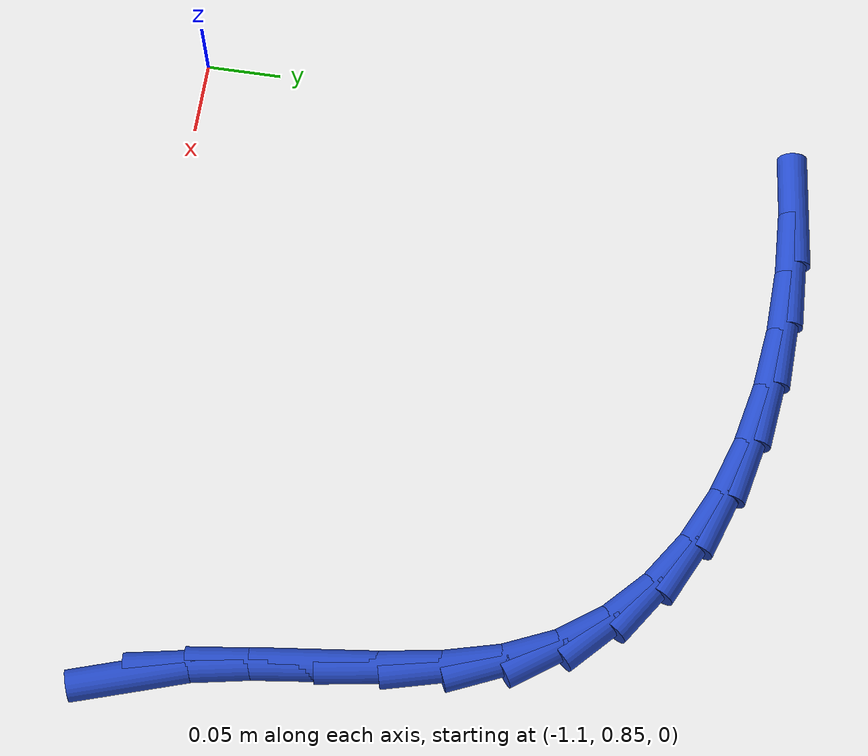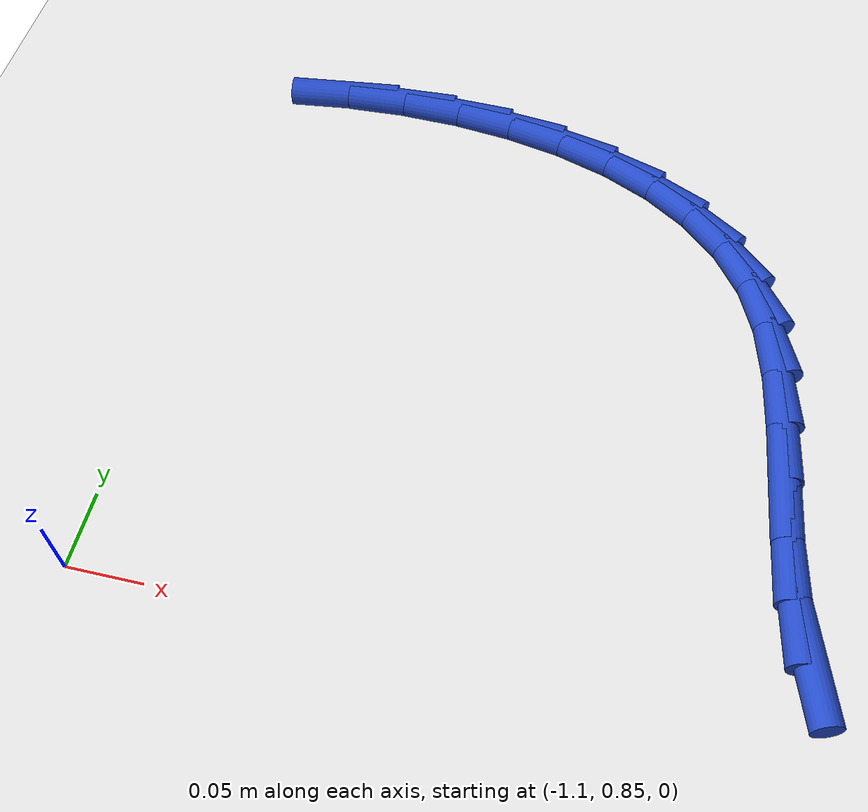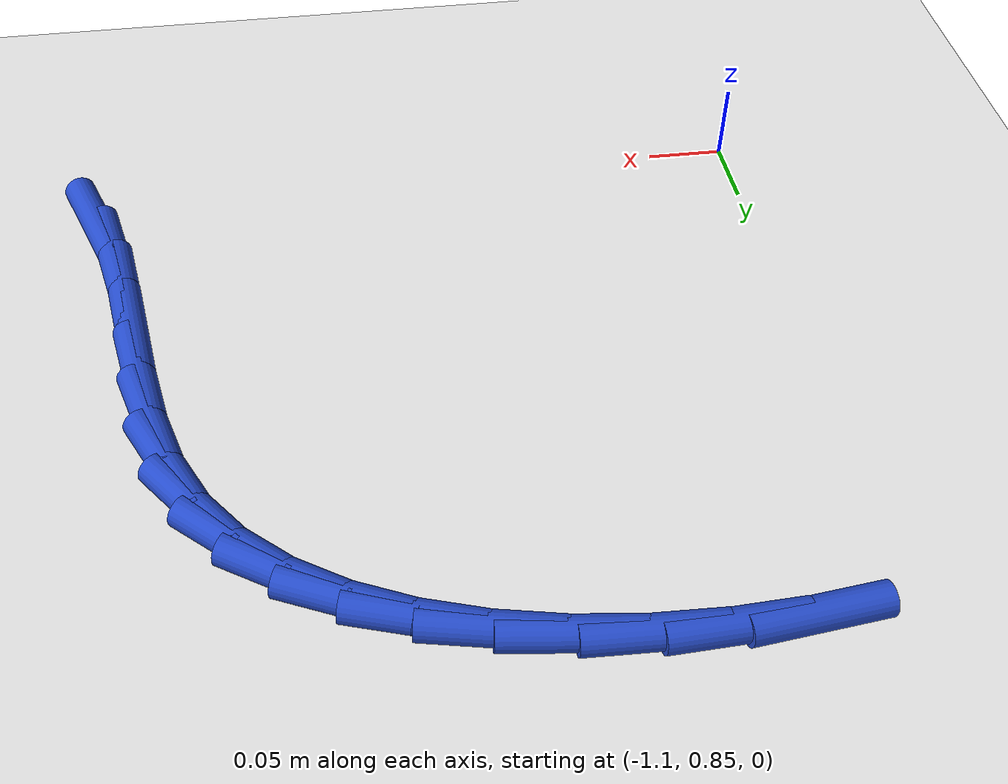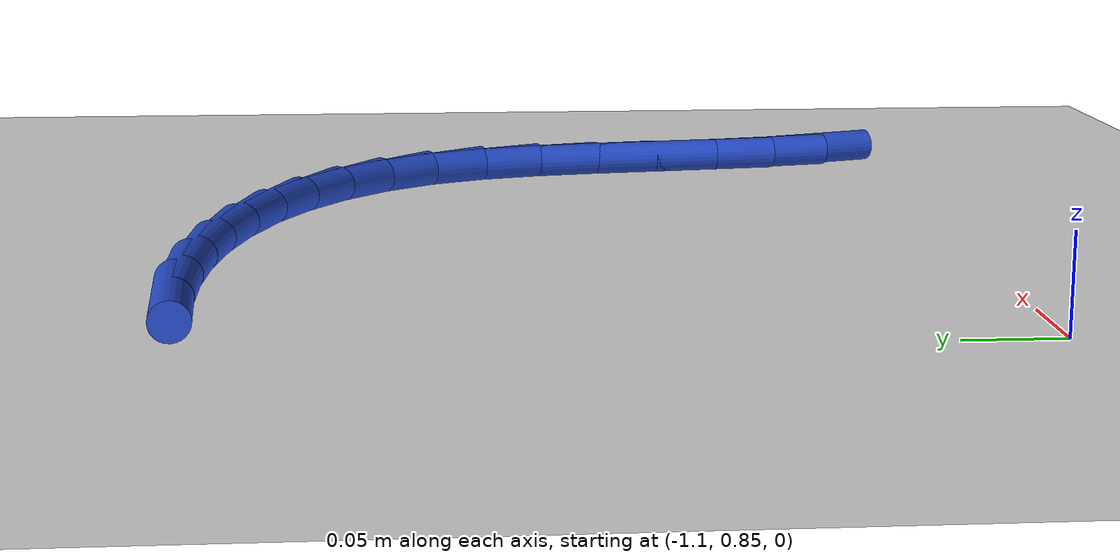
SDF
<sdf version="1.6">
 <world name="default">
  <model name="ground_plane">
   <static>1</static>
   <link name="link">
    <collision name="collision">
     <geometry><plane><normal>0 0 1</normal><size>100 100</size></plane></geometry>
     <surface><friction><ode><mu>100</mu><mu2>50</mu2></ode></friction></surface>
    </collision>
    <visual name="visual">
     <cast_shadows>0</cast_shadows>
     <geometry><plane><normal>0 0 1</normal><size>100 100</size></plane></geometry>
     <material>
      <script><uri>file://media/materials/scripts/gazebo.material</uri><name>Gazebo/WhiteGlow</name></script>
     </material>
    </visual>
   </link>
  </model>
  <model name="line">
   <link name="link_32">
    <pose>-0.6662520378113883 0.8860146556217079 0.01 0 1.57 -1.2587014514623511</pose>
    <collision name="collision">
     <geometry><cylinder><radius>0.01</radius><length>0.08</length></cylinder></geometry>
    </collision>
    <visual name="visual">
     <material>
      <script><name>Gazebo/Blue</name><uri>file://media/materials/scripts/gazebo.material</uri></script>
     </material>
     <geometry><cylinder><radius>0.01</radius><length>0.08</length></cylinder></geometry>
    </visual>
   </link>
   <link name="link_33">
    <pose>-0.6770591071181126 0.9195105225557909 0.01 0 1.57 -1.383983918766557</pose>
    <collision name="collision">
     <geometry><cylinder><radius>0.01</radius><length>0.08</length></cylinder></geometry>
    </collision>
    <visual name="visual">
     <material>
      <script><name>Gazebo/Blue</name><uri>file://media/materials/scripts/gazebo.material</uri></script>
     </material>
     <geometry><cylinder><radius>0.01</radius><length>0.08</length></cylinder></geometry>
    </visual>
   </link>
   <link name="link_34">
    <pose>-0.6840278526906737 0.9563790008187679 0.01 0 1.57 -1.4448951045219727</pose>
    <collision name="collision">
     <geometry><cylinder><radius>0.01</radius><length>0.08</length></cylinder></geometry>
    </collision>
    <visual name="visual">
     <material>
      <script><name>Gazebo/Blue</name><uri>file://media/materials/scripts/gazebo.material</uri></script>
     </material>
     <geometry><cylinder><radius>0.01</radius><length>0.08</length></cylinder></geometry>
    </visual>
   </link>
   <link name="link_35">
    <pose>-0.6889454128609842 0.9952312823251865 0.01 0 1.57 -1.4533711151475703</pose>
    <collision name="collision">
     <geometry><cylinder><radius>0.01</radius><length>0.08</length></cylinder></geometry>
    </collision>
    <visual name="visual">
     <material>
      <script><name>Gazebo/Blue</name><uri>file://media/materials/scripts/gazebo.material</uri></script>
     </material>
     <geometry><cylinder><radius>0.01</radius><length>0.08</length></cylinder></geometry>
    </visual>
   </link>
   <link name="link_36">
    <pose>-0.6935989259609571 1.0346785589895953 0.01 0 1.57 -1.4123416067688785</pose>
    <collision name="collision">
     <geometry><cylinder><radius>0.01</radius><length>0.08</length></cylinder></geometry>
    </collision>
    <visual name="visual">
     <material>
      <script><name>Gazebo/Blue</name><uri>file://media/materials/scripts/gazebo.material</uri></script>
     </material>
     <geometry><cylinder><radius>0.01</radius><length>0.08</length></cylinder></geometry>
    </visual>
   </link>
   <link name="link_37">
    <pose>-0.6997755303225047 1.0733320227265424 0.01 0 1.57 -1.3163148851048265</pose>
    <collision name="collision">
     <geometry><cylinder><radius>0.01</radius><length>0.08</length></cylinder></geometry>
    </collision>
    <visual name="visual">
     <material>
      <script><name>Gazebo/Blue</name><uri>file://media/materials/scripts/gazebo.material</uri></script>
     </material>
     <geometry><cylinder><radius>0.01</radius><length>0.08</length></cylinder></geometry>
    </visual>
   </link>
   <link name="link_38">
    <pose>-0.7092623642775403 1.109802865450576 0.01 0 1.57 -1.1543245672321736</pose>
    <collision name="collision">
     <geometry><cylinder><radius>0.01</radius><length>0.08</length></cylinder></geometry>
    </collision>
    <visual name="visual">
     <material>
      <script><name>Gazebo/Blue</name><uri>file://media/materials/scripts/gazebo.material</uri></script>
     </material>
     <geometry><cylinder><radius>0.01</radius><length>0.08</length></cylinder></geometry>
    </visual>
   </link>
   <link name="link_39">
    <pose>-0.7238220319621379 1.1427174261493862 0.01 0 1.57 -0.9514174282157696</pose>
    <collision name="collision">
     <geometry><cylinder><radius>0.01</radius><length>0.08</length></cylinder></geometry>
    </collision>
    <visual name="visual">
     <material>
      <script><name>Gazebo/Blue</name><uri>file://media/materials/scripts/gazebo.material</uri></script>
     </material>
     <geometry><cylinder><radius>0.01</radius><length>0.08</length></cylinder></geometry>
    </visual>
   </link>
   <link name="link_40">
    <pose>-0.7442152736061436 1.171320580728098 0.01 0 1.57 -0.7594153593585119</pose>
    <collision name="collision">
     <geometry><cylinder><radius>0.01</radius><length>0.08</length></cylinder></geometry>
    </collision>
    <visual name="visual">
     <material>
      <script><name>Gazebo/Blue</name><uri>file://media/materials/scripts/gazebo.material</uri></script>
     </material>
     <geometry><cylinder><radius>0.01</radius><length>0.08</length></cylinder></geometry>
    </visual>
   </link>
   <link name="link_41">
    <pose>-0.7698728434317024 1.1956783200559753 0.01 0 1.57 -0.589399324187846</pose>
    <collision name="collision">
     <geometry><cylinder><radius>0.01</radius><length>0.08</length></cylinder></geometry>
    </collision>
    <visual name="visual">
     <material>
      <script><name>Gazebo/Blue</name><uri>file://media/materials/scripts/gazebo.material</uri></script>
     </material>
     <geometry><cylinder><radius>0.01</radius><length>0.08</length></cylinder></geometry>
    </visual>
   </link>
   <link name="link_42">
    <pose>-0.8001336814655065 1.2159133198165366 0.01 0 1.57 -0.4431737044444387</pose>
    <collision name="collision">
     <geometry><cylinder><radius>0.01</radius><length>0.08</length></cylinder></geometry>
    </collision>
    <visual name="visual">
     <material>
      <script><name>Gazebo/Blue</name><uri>file://media/materials/scripts/gazebo.material</uri></script>
     </material>
     <geometry><cylinder><radius>0.01</radius><length>0.08</length></cylinder></geometry>
    </visual>
   </link>
   <link name="link_43">
    <pose>-0.8343367277342487 1.2321482556933 0.01 0 1.57 -0.31845314572352396</pose>
    <collision name="collision">
     <geometry><cylinder><radius>0.01</radius><length>0.08</length></cylinder></geometry>
    </collision>
    <visual name="visual">
     <material>
      <script><name>Gazebo/Blue</name><uri>file://media/materials/scripts/gazebo.material</uri></script>
     </material>
     <geometry><cylinder><radius>0.01</radius><length>0.08</length></cylinder></geometry>
    </visual>
   </link>
   <link name="link_44">
    <pose>-0.8718209222646209 1.2445058033697833 0.01 0 1.57 -0.21130932264771743</pose>
    <collision name="collision">
     <geometry><cylinder><radius>0.01</radius><length>0.08</length></cylinder></geometry>
    </collision>
    <visual name="visual">
     <material>
      <script><name>Gazebo/Blue</name><uri>file://media/materials/scripts/gazebo.material</uri></script>
     </material>
     <geometry><cylinder><radius>0.01</radius><length>0.08</length></cylinder></geometry>
    </visual>
   </link>
   <link name="link_45">
    <pose>-0.9119252050833155 1.253108638529505 0.01 0 1.57 -0.11762866173863026</pose>
    <collision name="collision">
     <geometry><cylinder><radius>0.01</radius><length>0.08</length></cylinder></geometry>
    </collision>
    <visual name="visual">
     <material>
      <script><name>Gazebo/Blue</name><uri>file://media/materials/scripts/gazebo.material</uri></script>
     </material>
     <geometry><cylinder><radius>0.01</radius><length>0.08</length></cylinder></geometry>
    </visual>
   </link>
   <link name="link_46">
    <pose>-0.9539885162170249 1.2580794368559822 0.01 0 1.57 -0.03369098426128056</pose>
    <collision name="collision">
     <geometry><cylinder><radius>0.01</radius><length>0.08</length></cylinder></geometry>
    </collision>
    <visual name="visual">
     <material>
      <script><name>Gazebo/Blue</name><uri>file://media/materials/scripts/gazebo.material</uri></script>
     </material>
     <geometry><cylinder><radius>0.01</radius><length>0.08</length></cylinder></geometry>
    </visual>
   </link>
   <link name="link_47">
    <pose>-0.9973497956924415 1.2595408740327343 0.01 0 1.57 0.043729549484648085</pose>
    <collision name="collision">
     <geometry><cylinder><radius>0.01</radius><length>0.08</length></cylinder></geometry>
    </collision>
    <visual name="visual">
     <material>
      <script><name>Gazebo/Blue</name><uri>file://media/materials/scripts/gazebo.material</uri></script>
     </material>
     <geometry><cylinder><radius>0.01</radius><length>0.08</length></cylinder></geometry>
    </visual>
   </link>
   <link name="link_48">
    <pose>-1.0413479835362567 1.2576156257432782 0.01 0 1.57 0.1174640705244743</pose>
    <collision name="collision">
     <geometry><cylinder><radius>0.01</radius><length>0.08</length></cylinder></geometry>
    </collision>
    <visual name="visual">
     <material>
      <script><name>Gazebo/Blue</name><uri>file://media/materials/scripts/gazebo.material</uri></script>
     </material>
     <geometry><cylinder><radius>0.01</radius><length>0.08</length></cylinder></geometry>
    </visual>
   </link>
  </model>
 </world>
</sdf>
